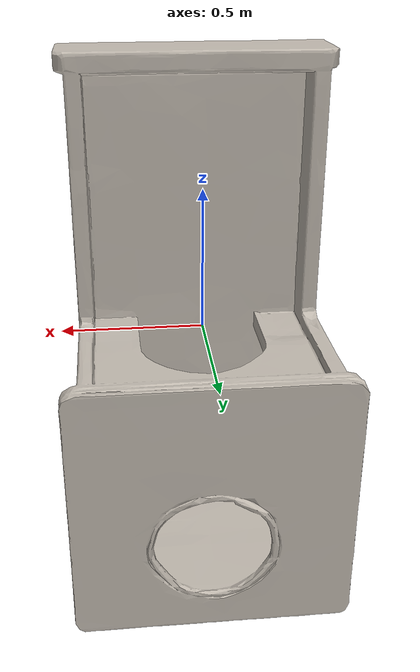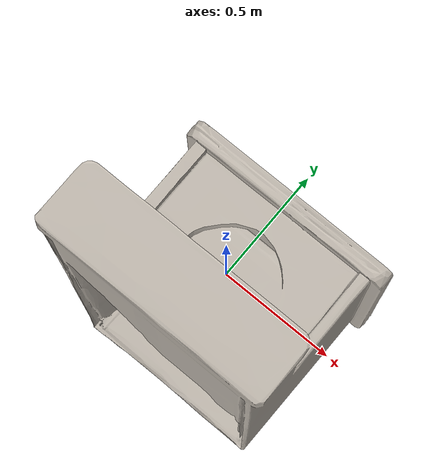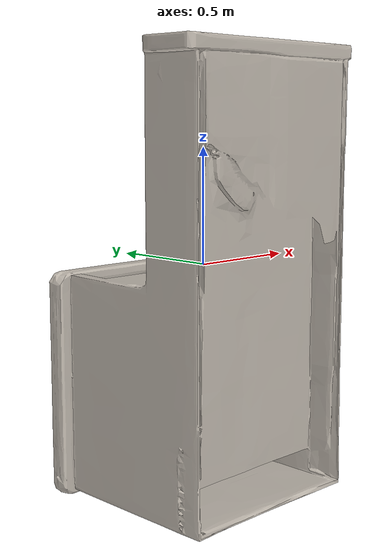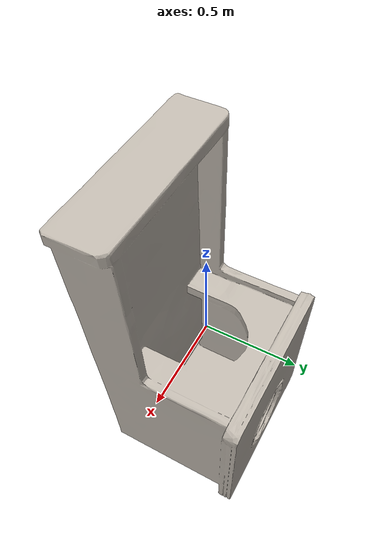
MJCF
<mujoco model="model">
  <default>
    <default class="visual">
      <geom group="2" type="mesh" contype="0" conaffinity="0"/>
    </default>
    <default class="collision">
      <geom group="3" type="mesh"/>
    </default>
  </default>
  <asset>
    <texture type="2d" name="texture" file="texture.png"/>
    <material name="Material.001" texture="texture" specular="0.5" shininess="0.25"/>
    <mesh file="model.obj"/>
    <mesh file="model_collision_0.obj"/>
    <mesh file="model_collision_1.obj"/>
    <mesh file="model_collision_2.obj"/>
    <mesh file="model_collision_3.obj"/>
    <mesh file="model_collision_4.obj"/>
    <mesh file="model_collision_5.obj"/>
    <mesh file="model_collision_6.obj"/>
    <mesh file="model_collision_7.obj"/>
    <mesh file="model_collision_8.obj"/>
    <mesh file="model_collision_9.obj"/>
    <mesh file="model_collision_10.obj"/>
    <mesh file="model_collision_11.obj"/>
    <mesh file="model_collision_12.obj"/>
    <mesh file="model_collision_13.obj"/>
    <mesh file="model_collision_14.obj"/>
    <mesh file="model_collision_15.obj"/>
    <mesh file="model_collision_16.obj"/>
    <mesh file="model_collision_17.obj"/>
    <mesh file="model_collision_18.obj"/>
    <mesh file="model_collision_19.obj"/>
    <mesh file="model_collision_20.obj"/>
    <mesh file="model_collision_21.obj"/>
    <mesh file="model_collision_22.obj"/>
    <mesh file="model_collision_23.obj"/>
    <mesh file="model_collision_24.obj"/>
    <mesh file="model_collision_25.obj"/>
    <mesh file="model_collision_26.obj"/>
    <mesh file="model_collision_27.obj"/>
    <mesh file="model_collision_28.obj"/>
    <mesh file="model_collision_29.obj"/>
    <mesh file="model_collision_30.obj"/>
    <mesh file="model_collision_31.obj"/>
    <mesh file="model_collision_32.obj"/>
    <mesh file="model_collision_33.obj"/>
    <mesh file="model_collision_34.obj"/>
    <mesh file="model_collision_35.obj"/>
    <mesh file="model_collision_36.obj"/>
    <mesh file="model_collision_37.obj"/>
    <mesh file="model_collision_38.obj"/>
    <mesh file="model_collision_39.obj"/>
    <mesh file="model_collision_40.obj"/>
    <mesh file="model_collision_41.obj"/>
    <mesh file="model_collision_42.obj"/>
    <mesh file="model_collision_43.obj"/>
    <mesh file="model_collision_44.obj"/>
    <mesh file="model_collision_45.obj"/>
    <mesh file="model_collision_46.obj"/>
    <mesh file="model_collision_47.obj"/>
    <mesh file="model_collision_48.obj"/>
    <mesh file="model_collision_49.obj"/>
    <mesh file="model_collision_50.obj"/>
    <mesh file="model_collision_51.obj"/>
    <mesh file="model_collision_52.obj"/>
    <mesh file="model_collision_53.obj"/>
    <mesh file="model_collision_54.obj"/>
    <mesh file="model_collision_55.obj"/>
    <mesh file="model_collision_56.obj"/>
    <mesh file="model_collision_57.obj"/>
    <mesh file="model_collision_58.obj"/>
    <mesh file="model_collision_59.obj"/>
    <mesh file="model_collision_60.obj"/>
    <mesh file="model_collision_61.obj"/>
    <mesh file="model_collision_62.obj"/>
    <mesh file="model_collision_63.obj"/>
    <mesh file="model_collision_64.obj"/>
    <mesh file="model_collision_65.obj"/>
    <mesh file="model_collision_66.obj"/>
    <mesh file="model_collision_67.obj"/>
    <mesh file="model_collision_68.obj"/>
    <mesh file="model_collision_69.obj"/>
    <mesh file="model_collision_70.obj"/>
    <mesh file="model_collision_71.obj"/>
    <mesh file="model_collision_72.obj"/>
    <mesh file="model_collision_73.obj"/>
    <mesh file="model_collision_74.obj"/>
    <mesh file="model_collision_75.obj"/>
    <mesh file="model_collision_76.obj"/>
    <mesh file="model_collision_77.obj"/>
    <mesh file="model_collision_78.obj"/>
    <mesh file="model_collision_79.obj"/>
    <mesh file="model_collision_80.obj"/>
    <mesh file="model_collision_81.obj"/>
    <mesh file="model_collision_82.obj"/>
    <mesh file="model_collision_83.obj"/>
    <mesh file="model_collision_84.obj"/>
    <mesh file="model_collision_85.obj"/>
    <mesh file="model_collision_86.obj"/>
    <mesh file="model_collision_87.obj"/>
    <mesh file="model_collision_88.obj"/>
    <mesh file="model_collision_89.obj"/>
    <mesh file="model_collision_90.obj"/>
    <mesh file="model_collision_91.obj"/>
    <mesh file="model_collision_92.obj"/>
    <mesh file="model_collision_93.obj"/>
    <mesh file="model_collision_94.obj"/>
    <mesh file="model_collision_95.obj"/>
    <mesh file="model_collision_96.obj"/>
    <mesh file="model_collision_97.obj"/>
    <mesh file="model_collision_98.obj"/>
    <mesh file="model_collision_99.obj"/>
    <mesh file="model_collision_100.obj"/>
    <mesh file="model_collision_101.obj"/>
    <mesh file="model_collision_102.obj"/>
    <mesh file="model_collision_103.obj"/>
    <mesh file="model_collision_104.obj"/>
    <mesh file="model_collision_105.obj"/>
    <mesh file="model_collision_106.obj"/>
    <mesh file="model_collision_107.obj"/>
    <mesh file="model_collision_108.obj"/>
    <mesh file="model_collision_109.obj"/>
    <mesh file="model_collision_110.obj"/>
    <mesh file="model_collision_111.obj"/>
    <mesh file="model_collision_112.obj"/>
    <mesh file="model_collision_113.obj"/>
    <mesh file="model_collision_114.obj"/>
    <mesh file="model_collision_115.obj"/>
    <mesh file="model_collision_116.obj"/>
    <mesh file="model_collision_117.obj"/>
    <mesh file="model_collision_118.obj"/>
    <mesh file="model_collision_119.obj"/>
    <mesh file="model_collision_120.obj"/>
    <mesh file="model_collision_121.obj"/>
    <mesh file="model_collision_122.obj"/>
    <mesh file="model_collision_123.obj"/>
    <mesh file="model_collision_124.obj"/>
    <mesh file="model_collision_125.obj"/>
    <mesh file="model_collision_126.obj"/>
    <mesh file="model_collision_127.obj"/>
    <mesh file="model_collision_128.obj"/>
    <mesh file="model_collision_129.obj"/>
    <mesh file="model_collision_130.obj"/>
    <mesh file="model_collision_131.obj"/>
    <mesh file="model_collision_132.obj"/>
    <mesh file="model_collision_133.obj"/>
    <mesh file="model_collision_134.obj"/>
    <mesh file="model_collision_135.obj"/>
    <mesh file="model_collision_136.obj"/>
    <mesh file="model_collision_137.obj"/>
    <mesh file="model_collision_138.obj"/>
    <mesh file="model_collision_139.obj"/>
    <mesh file="model_collision_140.obj"/>
    <mesh file="model_collision_141.obj"/>
    <mesh file="model_collision_142.obj"/>
    <mesh file="model_collision_143.obj"/>
    <mesh file="model_collision_144.obj"/>
    <mesh file="model_collision_145.obj"/>
    <mesh file="model_collision_146.obj"/>
    <mesh file="model_collision_147.obj"/>
    <mesh file="model_collision_148.obj"/>
    <mesh file="model_collision_149.obj"/>
    <mesh file="model_collision_150.obj"/>
    <mesh file="model_collision_151.obj"/>
    <mesh file="model_collision_152.obj"/>
    <mesh file="model_collision_153.obj"/>
    <mesh file="model_collision_154.obj"/>
    <mesh file="model_collision_155.obj"/>
    <mesh file="model_collision_156.obj"/>
    <mesh file="model_collision_157.obj"/>
    <mesh file="model_collision_158.obj"/>
    <mesh file="model_collision_159.obj"/>
    <mesh file="model_collision_160.obj"/>
    <mesh file="model_collision_161.obj"/>
    <mesh file="model_collision_162.obj"/>
    <mesh file="model_collision_163.obj"/>
    <mesh file="model_collision_164.obj"/>
    <mesh file="model_collision_165.obj"/>
    <mesh file="model_collision_166.obj"/>
    <mesh file="model_collision_167.obj"/>
    <mesh file="model_collision_168.obj"/>
    <mesh file="model_collision_169.obj"/>
    <mesh file="model_collision_170.obj"/>
    <mesh file="model_collision_171.obj"/>
    <mesh file="model_collision_172.obj"/>
    <mesh file="model_collision_173.obj"/>
    <mesh file="model_collision_174.obj"/>
    <mesh file="model_collision_175.obj"/>
    <mesh file="model_collision_176.obj"/>
    <mesh file="model_collision_177.obj"/>
    <mesh file="model_collision_178.obj"/>
    <mesh file="model_collision_179.obj"/>
    <mesh file="model_collision_180.obj"/>
    <mesh file="model_collision_181.obj"/>
    <mesh file="model_collision_182.obj"/>
    <mesh file="model_collision_183.obj"/>
    <mesh file="model_collision_184.obj"/>
    <mesh file="model_collision_185.obj"/>
    <mesh file="model_collision_186.obj"/>
    <mesh file="model_collision_187.obj"/>
    <mesh file="model_collision_188.obj"/>
    <mesh file="model_collision_189.obj"/>
    <mesh file="model_collision_190.obj"/>
    <mesh file="model_collision_191.obj"/>
    <mesh file="model_collision_192.obj"/>
    <mesh file="model_collision_193.obj"/>
    <mesh file="model_collision_194.obj"/>
    <mesh file="model_collision_195.obj"/>
    <mesh file="model_collision_196.obj"/>
    <mesh file="model_collision_197.obj"/>
    <mesh file="model_collision_198.obj"/>
    <mesh file="model_collision_199.obj"/>
    <mesh file="model_collision_200.obj"/>
    <mesh file="model_collision_201.obj"/>
    <mesh file="model_collision_202.obj"/>
    <mesh file="model_collision_203.obj"/>
    <mesh file="model_collision_204.obj"/>
    <mesh file="model_collision_205.obj"/>
    <mesh file="model_collision_206.obj"/>
    <mesh file="model_collision_207.obj"/>
    <mesh file="model_collision_208.obj"/>
    <mesh file="model_collision_209.obj"/>
    <mesh file="model_collision_210.obj"/>
    <mesh file="model_collision_211.obj"/>
    <mesh file="model_collision_212.obj"/>
    <mesh file="model_collision_213.obj"/>
    <mesh file="model_collision_214.obj"/>
    <mesh file="model_collision_215.obj"/>
    <mesh file="model_collision_216.obj"/>
    <mesh file="model_collision_217.obj"/>
    <mesh file="model_collision_218.obj"/>
    <mesh file="model_collision_219.obj"/>
    <mesh file="model_collision_220.obj"/>
    <mesh file="model_collision_221.obj"/>
    <mesh file="model_collision_222.obj"/>
    <mesh file="model_collision_223.obj"/>
    <mesh file="model_collision_224.obj"/>
    <mesh file="model_collision_225.obj"/>
    <mesh file="model_collision_226.obj"/>
    <mesh file="model_collision_227.obj"/>
    <mesh file="model_collision_228.obj"/>
    <mesh file="model_collision_229.obj"/>
    <mesh file="model_collision_230.obj"/>
    <mesh file="model_collision_231.obj"/>
    <mesh file="model_collision_232.obj"/>
    <mesh file="model_collision_233.obj"/>
    <mesh file="model_collision_234.obj"/>
    <mesh file="model_collision_235.obj"/>
    <mesh file="model_collision_236.obj"/>
    <mesh file="model_collision_237.obj"/>
    <mesh file="model_collision_238.obj"/>
    <mesh file="model_collision_239.obj"/>
    <mesh file="model_collision_240.obj"/>
    <mesh file="model_collision_241.obj"/>
    <mesh file="model_collision_242.obj"/>
    <mesh file="model_collision_243.obj"/>
    <mesh file="model_collision_244.obj"/>
    <mesh file="model_collision_245.obj"/>
    <mesh file="model_collision_246.obj"/>
    <mesh file="model_collision_247.obj"/>
    <mesh file="model_collision_248.obj"/>
    <mesh file="model_collision_249.obj"/>
    <mesh file="model_collision_250.obj"/>
    <mesh file="model_collision_251.obj"/>
    <mesh file="model_collision_252.obj"/>
    <mesh file="model_collision_253.obj"/>
    <mesh file="model_collision_254.obj"/>
    <mesh file="model_collision_255.obj"/>
    <mesh file="model_collision_256.obj"/>
    <mesh file="model_collision_257.obj"/>
    <mesh file="model_collision_258.obj"/>
    <mesh file="model_collision_259.obj"/>
    <mesh file="model_collision_260.obj"/>
    <mesh file="model_collision_261.obj"/>
    <mesh file="model_collision_262.obj"/>
    <mesh file="model_collision_263.obj"/>
    <mesh file="model_collision_264.obj"/>
    <mesh file="model_collision_265.obj"/>
    <mesh file="model_collision_266.obj"/>
    <mesh file="model_collision_267.obj"/>
    <mesh file="model_collision_268.obj"/>
    <mesh file="model_collision_269.obj"/>
    <mesh file="model_collision_270.obj"/>
    <mesh file="model_collision_271.obj"/>
    <mesh file="model_collision_272.obj"/>
    <mesh file="model_collision_273.obj"/>
    <mesh file="model_collision_274.obj"/>
    <mesh file="model_collision_275.obj"/>
    <mesh file="model_collision_276.obj"/>
    <mesh file="model_collision_277.obj"/>
  </asset>
  <worldbody>
    <body name="model">
      <geom material="Material.001" mesh="model" class="visual"/>
      <geom mesh="model_collision_0" rgba="0.6587957864419071 0.8772163802960932 0.3861479678943287 1" class="collision"/>
      <geom mesh="model_collision_1" rgba="0.7588541550623709 0.1893972782798624 0.37943860901026194 1" class="collision"/>
      <geom mesh="model_collision_2" rgba="0.48933765626564507 0.9695244709947626 0.7338256199344897 1" class="collision"/>
      <geom mesh="model_collision_3" rgba="0.23897557280588533 0.010786194871451382 0.02649007694402561 1" class="collision"/>
      <geom mesh="model_collision_4" rgba="0.365777748227627 0.5867165200515327 0.41859934221542294 1" class="collision"/>
      <geom mesh="model_collision_5" rgba="0.22060896461696222 0.36533829526665573 0.8855212682148677 1" class="collision"/>
      <geom mesh="model_collision_6" rgba="0.11858030108295536 0.5163241589610037 0.18319386874207833 1" class="collision"/>
      <geom mesh="model_collision_7" rgba="0.6407027989588587 0.20831995723915475 0.7672722482258051 1" class="collision"/>
      <geom mesh="model_collision_8" rgba="0.6180980085330194 0.22996009886085444 0.9149751667705702 1" class="collision"/>
      <geom mesh="model_collision_9" rgba="0.027815516991358535 0.7676452778778768 0.6521782947312494 1" class="collision"/>
      <geom mesh="model_collision_10" rgba="0.36549753683055586 0.2157999825475222 0.1507458490318847 1" class="collision"/>
      <geom mesh="model_collision_11" rgba="0.5724580731264256 0.9574179173113297 0.37818080104629515 1" class="collision"/>
      <geom mesh="model_collision_12" rgba="0.028545911967627013 0.421799339320451 0.26876222033196384 1" class="collision"/>
      <geom mesh="model_collision_13" rgba="0.39317679740606404 0.7583698173852014 0.2572157684206642 1" class="collision"/>
      <geom mesh="model_collision_14" rgba="0.76290271086967 0.828190669076819 0.5030786665210893 1" class="collision"/>
      <geom mesh="model_collision_15" rgba="0.7210697078196127 0.394570153025124 0.5768812352648263 1" class="collision"/>
      <geom mesh="model_collision_16" rgba="0.3230982282272141 0.6041735403256443 0.7415602637850462 1" class="collision"/>
      <geom mesh="model_collision_17" rgba="0.020149935784545048 0.7948983570971808 0.7400803946008455 1" class="collision"/>
      <geom mesh="model_collision_18" rgba="0.4218060819713054 0.3878053171238107 0.7963856716950564 1" class="collision"/>
      <geom mesh="model_collision_19" rgba="0.3702604055315696 0.21963826810931375 0.9752203407529496 1" class="collision"/>
      <geom mesh="model_collision_20" rgba="0.2772739121215816 0.7693221903148425 0.3300072096204769 1" class="collision"/>
      <geom mesh="model_collision_21" rgba="0.19271251059639827 0.13411237008084365 0.7738530955888586 1" class="collision"/>
      <geom mesh="model_collision_22" rgba="0.36505299041715955 0.14757477754737292 0.8111534966155121 1" class="collision"/>
      <geom mesh="model_collision_23" rgba="0.6852750202141143 0.37908638044978193 0.12317111468582898 1" class="collision"/>
      <geom mesh="model_collision_24" rgba="0.6147229546690341 0.716521569573399 0.5258096597230669 1" class="collision"/>
      <geom mesh="model_collision_25" rgba="0.04357086921121678 0.055910561254217006 0.014238397902254785 1" class="collision"/>
      <geom mesh="model_collision_26" rgba="0.0466510659879541 0.7259451099496347 0.3523617695330299 1" class="collision"/>
      <geom mesh="model_collision_27" rgba="0.509139057270697 0.35867890850848927 0.5058152129945177 1" class="collision"/>
      <geom mesh="model_collision_28" rgba="0.6940930473091614 0.3535238090460737 0.04534065423221534 1" class="collision"/>
      <geom mesh="model_collision_29" rgba="0.6495502043259175 0.3652080902007333 0.30534441603726126 1" class="collision"/>
      <geom mesh="model_collision_30" rgba="0.5496254353945454 0.4071851839320664 0.5526002164688095 1" class="collision"/>
      <geom mesh="model_collision_31" rgba="0.39335742755718217 0.7492551789407093 0.15500381695405785 1" class="collision"/>
      <geom mesh="model_collision_32" rgba="0.8598782018471182 0.007897311352655478 0.664675978786444 1" class="collision"/>
      <geom mesh="model_collision_33" rgba="0.4813883111619812 0.7800274877007921 0.15327854350985337 1" class="collision"/>
      <geom mesh="model_collision_34" rgba="0.7649096138077267 0.07447911460559309 0.6673556309406121 1" class="collision"/>
      <geom mesh="model_collision_35" rgba="0.5803166895080961 0.1900176528646621 0.9543054953342134 1" class="collision"/>
      <geom mesh="model_collision_36" rgba="0.738286412576969 0.808620852768266 0.6005410529877504 1" class="collision"/>
      <geom mesh="model_collision_37" rgba="0.7461875895559988 0.11098023025852433 0.811511908609581 1" class="collision"/>
      <geom mesh="model_collision_38" rgba="0.48381988437572565 0.599432403536869 0.9906040447406667 1" class="collision"/>
      <geom mesh="model_collision_39" rgba="0.7343575259014719 0.3200542016196174 0.23810580000614112 1" class="collision"/>
      <geom mesh="model_collision_40" rgba="0.5127998806173889 0.8193972505037113 0.32767659712797326 1" class="collision"/>
      <geom mesh="model_collision_41" rgba="0.17086278521609077 0.4147914319456657 0.12506226030019707 1" class="collision"/>
      <geom mesh="model_collision_42" rgba="0.6263664036675528 0.1770421442332143 0.06785552447074772 1" class="collision"/>
      <geom mesh="model_collision_43" rgba="0.8023158006623168 0.8984563094730267 0.01806303476682336 1" class="collision"/>
      <geom mesh="model_collision_44" rgba="0.7757118235226457 0.2453778199102994 0.37548689972690696 1" class="collision"/>
      <geom mesh="model_collision_45" rgba="0.7565070606386186 0.877167560097369 0.08115953192222825 1" class="collision"/>
      <geom mesh="model_collision_46" rgba="0.9375474469605997 0.8390079237902862 0.7237902949745956 1" class="collision"/>
      <geom mesh="model_collision_47" rgba="0.8583350348517212 0.581344263872102 0.3393822938023464 1" class="collision"/>
      <geom mesh="model_collision_48" rgba="0.162952238651913 0.005498286426415699 0.3509902845554925 1" class="collision"/>
      <geom mesh="model_collision_49" rgba="0.08046698181661172 0.24289233812824385 0.9992225901381961 1" class="collision"/>
      <geom mesh="model_collision_50" rgba="0.13649450749649583 0.9863604905002403 0.1964227070645922 1" class="collision"/>
      <geom mesh="model_collision_51" rgba="0.6387359922228779 0.686000211957101 0.49343657251083284 1" class="collision"/>
      <geom mesh="model_collision_52" rgba="0.20572789866377705 0.966832219821574 0.9802108719320876 1" class="collision"/>
      <geom mesh="model_collision_53" rgba="0.8445584797781901 0.5524731646841888 0.087395690068229 1" class="collision"/>
      <geom mesh="model_collision_54" rgba="0.4037804412543372 0.9253731359008396 0.410192294825659 1" class="collision"/>
      <geom mesh="model_collision_55" rgba="0.05758577322592762 0.28965827667087574 0.9994678744399148 1" class="collision"/>
      <geom mesh="model_collision_56" rgba="0.8617570737534774 0.8402420126344347 0.9473632726315314 1" class="collision"/>
      <geom mesh="model_collision_57" rgba="0.7016968040330613 0.959247109779297 0.558215936458284 1" class="collision"/>
      <geom mesh="model_collision_58" rgba="0.5697232387308335 0.42565097861177437 0.5539072053715193 1" class="collision"/>
      <geom mesh="model_collision_59" rgba="0.17612741938746745 0.15026718646803994 0.06047821270838005 1" class="collision"/>
      <geom mesh="model_collision_60" rgba="0.6361060592715331 0.23756078792610558 0.6885362239224914 1" class="collision"/>
      <geom mesh="model_collision_61" rgba="0.16616914883589728 0.6071264946100027 0.3983995360332495 1" class="collision"/>
      <geom mesh="model_collision_62" rgba="0.3262893623283436 0.60635317752026 0.4510637392495642 1" class="collision"/>
      <geom mesh="model_collision_63" rgba="0.6993717768997557 0.586737093446427 0.6695769991035649 1" class="collision"/>
      <geom mesh="model_collision_64" rgba="0.6154115338609143 0.367305214914752 0.49733222458267845 1" class="collision"/>
      <geom mesh="model_collision_65" rgba="0.7977985309827511 0.6422225639650637 0.452949115713265 1" class="collision"/>
      <geom mesh="model_collision_66" rgba="0.4147818838777746 0.6723855281683668 0.46899414792750305 1" class="collision"/>
      <geom mesh="model_collision_67" rgba="0.27636073132864836 0.3435653104289066 0.7935162864906408 1" class="collision"/>
      <geom mesh="model_collision_68" rgba="0.6283920640064804 0.13959279168990713 0.6241386706862471 1" class="collision"/>
      <geom mesh="model_collision_69" rgba="0.7429645027662702 0.4622940698389594 0.9511844287828987 1" class="collision"/>
      <geom mesh="model_collision_70" rgba="0.8767211310099742 0.9678995643480487 0.2941317651501566 1" class="collision"/>
      <geom mesh="model_collision_71" rgba="0.8997771791999758 0.9908207680157058 0.5169738811099865 1" class="collision"/>
      <geom mesh="model_collision_72" rgba="0.4359482893025449 0.4867960184626341 0.33487693936513974 1" class="collision"/>
      <geom mesh="model_collision_73" rgba="0.15899114604954212 0.6907849724654126 0.7515939115232729 1" class="collision"/>
      <geom mesh="model_collision_74" rgba="0.39354482332177165 0.16596741730829878 0.593775747140664 1" class="collision"/>
      <geom mesh="model_collision_75" rgba="0.9755692297596319 0.8197594007084835 0.15722606024950891 1" class="collision"/>
      <geom mesh="model_collision_76" rgba="0.31057728146349894 0.8866826503335692 0.6709128060041722 1" class="collision"/>
      <geom mesh="model_collision_77" rgba="0.4898661577145501 0.7464127370886867 0.20416632749078423 1" class="collision"/>
      <geom mesh="model_collision_78" rgba="0.7259843532656727 0.2194909446737957 0.9165917873161071 1" class="collision"/>
      <geom mesh="model_collision_79" rgba="0.5165827173491514 0.68160971229905 0.7504008094063144 1" class="collision"/>
      <geom mesh="model_collision_80" rgba="0.3111356102970536 0.8338484534914353 0.30716945397611006 1" class="collision"/>
      <geom mesh="model_collision_81" rgba="0.18356052804848166 0.40350352118085075 0.6755693110584788 1" class="collision"/>
      <geom mesh="model_collision_82" rgba="0.1878869136609732 0.38157521336735156 0.4501809641194632 1" class="collision"/>
      <geom mesh="model_collision_83" rgba="0.5007190008362276 0.646023522809987 0.865579056121407 1" class="collision"/>
      <geom mesh="model_collision_84" rgba="0.3493195744539457 0.6881832441381623 0.4885980937629957 1" class="collision"/>
      <geom mesh="model_collision_85" rgba="0.22743369415630343 0.9536393484771173 0.7191913936033069 1" class="collision"/>
      <geom mesh="model_collision_86" rgba="0.3089787231412505 0.6412403658487835 0.8446569470503908 1" class="collision"/>
      <geom mesh="model_collision_87" rgba="0.5902261438375385 0.2739101266741034 0.889962854399884 1" class="collision"/>
      <geom mesh="model_collision_88" rgba="0.2270309241754762 0.6893097355531965 0.320366066658222 1" class="collision"/>
      <geom mesh="model_collision_89" rgba="0.13755394982269942 0.9913959978733066 0.8864611667122987 1" class="collision"/>
      <geom mesh="model_collision_90" rgba="0.3582228120876366 0.10231751093659303 0.3125398981343058 1" class="collision"/>
      <geom mesh="model_collision_91" rgba="0.9411649072187863 0.7798046801777262 0.7747252732260657 1" class="collision"/>
      <geom mesh="model_collision_92" rgba="0.43065065232931865 0.3618550024967928 0.45141413032941224 1" class="collision"/>
      <geom mesh="model_collision_93" rgba="0.6853064243957842 0.6510498663893606 0.5094573741057977 1" class="collision"/>
      <geom mesh="model_collision_94" rgba="0.4973096859260494 0.5518060413310177 0.8030758079791199 1" class="collision"/>
      <geom mesh="model_collision_95" rgba="0.2853607526613826 0.17550400335890592 0.43224777738999076 1" class="collision"/>
      <geom mesh="model_collision_96" rgba="0.11639220695312791 0.2863612132179796 0.10579103453866234 1" class="collision"/>
      <geom mesh="model_collision_97" rgba="0.2756315931629314 0.5158852220164983 0.35910247316433375 1" class="collision"/>
      <geom mesh="model_collision_98" rgba="0.99627688566253 0.8796094874731324 0.9598252134325942 1" class="collision"/>
      <geom mesh="model_collision_99" rgba="0.8322389486123327 0.9130167248422681 0.38209168054885634 1" class="collision"/>
      <geom mesh="model_collision_100" rgba="0.6180270820134561 0.04877493546035694 0.2652606258553768 1" class="collision"/>
      <geom mesh="model_collision_101" rgba="0.6285410891271109 0.6136944633651374 0.6079438008099965 1" class="collision"/>
      <geom mesh="model_collision_102" rgba="0.3398930435309153 0.6334666693512848 0.515148255162726 1" class="collision"/>
      <geom mesh="model_collision_103" rgba="0.2226887828381633 0.747664064388591 0.9023633579292868 1" class="collision"/>
      <geom mesh="model_collision_104" rgba="0.5156400236237639 0.570063468427841 0.03363678594776609 1" class="collision"/>
      <geom mesh="model_collision_105" rgba="0.5863589967872794 0.09066347894237492 0.749143064757933 1" class="collision"/>
      <geom mesh="model_collision_106" rgba="0.2689948468186423 0.9970963110978956 0.29321386608190503 1" class="collision"/>
      <geom mesh="model_collision_107" rgba="0.23036390811322804 0.15506526737258686 0.9092301023438887 1" class="collision"/>
      <geom mesh="model_collision_108" rgba="0.12597444828984705 0.8024474864461202 0.8570454917818487 1" class="collision"/>
      <geom mesh="model_collision_109" rgba="0.34990554129924223 0.009368038510135568 0.8804207033640375 1" class="collision"/>
      <geom mesh="model_collision_110" rgba="0.9537124912196159 0.4614043974814225 0.31231804718073464 1" class="collision"/>
      <geom mesh="model_collision_111" rgba="0.6634121569674082 0.5764564854900959 0.0281404677471766 1" class="collision"/>
      <geom mesh="model_collision_112" rgba="0.8615653588435138 0.6653096296311557 0.9937251639444131 1" class="collision"/>
      <geom mesh="model_collision_113" rgba="0.6976996294367402 0.4681620142568872 0.24591819277904003 1" class="collision"/>
      <geom mesh="model_collision_114" rgba="0.7635980149499754 0.4055756398093311 0.48634079466485824 1" class="collision"/>
      <geom mesh="model_collision_115" rgba="0.027536178673396083 0.7897753188695865 0.8238954033077885 1" class="collision"/>
      <geom mesh="model_collision_116" rgba="0.39096099569906806 0.553953817006457 0.9501032221784337 1" class="collision"/>
      <geom mesh="model_collision_117" rgba="0.45766577742821146 0.3634320494524056 0.013536606746700541 1" class="collision"/>
      <geom mesh="model_collision_118" rgba="0.1715836075044359 0.7987880880074106 0.968451773839224 1" class="collision"/>
      <geom mesh="model_collision_119" rgba="0.8210016296662934 0.18080096464993245 0.9069207546528973 1" class="collision"/>
      <geom mesh="model_collision_120" rgba="0.4261377617922213 0.2807778386061299 0.284646327997813 1" class="collision"/>
      <geom mesh="model_collision_121" rgba="0.8041579467227927 0.1497632021311196 0.72806886914239 1" class="collision"/>
      <geom mesh="model_collision_122" rgba="0.9407886971036069 0.7302764470633821 0.5792194012850742 1" class="collision"/>
      <geom mesh="model_collision_123" rgba="0.6370440456901889 0.5852230268579706 0.17568488863923082 1" class="collision"/>
      <geom mesh="model_collision_124" rgba="0.7887863686311127 0.4338685733409102 0.2578818611887481 1" class="collision"/>
      <geom mesh="model_collision_125" rgba="0.8811036599244534 0.6738727510906517 0.4112032256830177 1" class="collision"/>
      <geom mesh="model_collision_126" rgba="0.7442633340086957 0.47629786449447187 0.2682157400468591 1" class="collision"/>
      <geom mesh="model_collision_127" rgba="0.34871183029437947 0.9439586798911686 0.560145135915227 1" class="collision"/>
      <geom mesh="model_collision_128" rgba="0.9352645919591019 0.6815081867892423 0.4605963214338342 1" class="collision"/>
      <geom mesh="model_collision_129" rgba="0.23666144442844117 0.0694698078091136 0.023680782459893246 1" class="collision"/>
      <geom mesh="model_collision_130" rgba="0.7945665935067266 0.8035791598176097 0.44198130622441656 1" class="collision"/>
      <geom mesh="model_collision_131" rgba="0.4795214929705188 0.3226896341463943 0.8536006101469725 1" class="collision"/>
      <geom mesh="model_collision_132" rgba="0.12963808067796379 0.11875244752531111 0.12346802534542722 1" class="collision"/>
      <geom mesh="model_collision_133" rgba="0.30721236914101024 0.6528443202204929 0.8007081594233417 1" class="collision"/>
      <geom mesh="model_collision_134" rgba="0.034668343670551494 0.5856354534618479 0.45430050781248954 1" class="collision"/>
      <geom mesh="model_collision_135" rgba="0.5598721799797514 0.6145467909587502 0.6591967058264049 1" class="collision"/>
      <geom mesh="model_collision_136" rgba="0.16915245033578752 0.2765444254864703 0.20206910979661763 1" class="collision"/>
      <geom mesh="model_collision_137" rgba="0.8768789073322318 0.003250582258093382 0.6223060993249647 1" class="collision"/>
      <geom mesh="model_collision_138" rgba="0.728367473125102 0.8203477544805629 0.29958945154880257 1" class="collision"/>
      <geom mesh="model_collision_139" rgba="0.49409374990453414 0.9935179009264095 0.8908573290000604 1" class="collision"/>
      <geom mesh="model_collision_140" rgba="0.4595836888857463 0.032263606249968935 0.7457834114392533 1" class="collision"/>
      <geom mesh="model_collision_141" rgba="0.4301950436425337 0.42930202317944777 0.18420116873617298 1" class="collision"/>
      <geom mesh="model_collision_142" rgba="0.7533986676920007 0.6691886007342951 0.9320029168310556 1" class="collision"/>
      <geom mesh="model_collision_143" rgba="0.1925565463932415 0.5849063480369628 0.9627990844353949 1" class="collision"/>
      <geom mesh="model_collision_144" rgba="0.21301713903998076 0.9195081986880536 0.3105705975182754 1" class="collision"/>
      <geom mesh="model_collision_145" rgba="0.11812954584867652 0.19831236891884074 0.36143968726981635 1" class="collision"/>
      <geom mesh="model_collision_146" rgba="0.9695908975746719 0.9914799143900769 0.4601501962561363 1" class="collision"/>
      <geom mesh="model_collision_147" rgba="0.3501809236596827 0.6510573680521523 0.42810094127190157 1" class="collision"/>
      <geom mesh="model_collision_148" rgba="0.15252970605620464 0.2662666981232221 0.31306257943181437 1" class="collision"/>
      <geom mesh="model_collision_149" rgba="0.6397336172807453 0.5982954821087022 0.797260690990469 1" class="collision"/>
      <geom mesh="model_collision_150" rgba="0.8821579235901624 0.7236772374845957 0.4605643122202575 1" class="collision"/>
      <geom mesh="model_collision_151" rgba="0.8901548595830971 0.4533193323312855 0.4909252427622003 1" class="collision"/>
      <geom mesh="model_collision_152" rgba="0.33212299969460235 0.2389442964733236 0.44415655392801945 1" class="collision"/>
      <geom mesh="model_collision_153" rgba="0.7928041483253974 0.34483711166074904 0.685669887022433 1" class="collision"/>
      <geom mesh="model_collision_154" rgba="0.3265649471216937 0.7739027125868905 0.06896749655415724 1" class="collision"/>
      <geom mesh="model_collision_155" rgba="0.1642951796091935 0.5631332766350593 0.6723635905588335 1" class="collision"/>
      <geom mesh="model_collision_156" rgba="0.533546620570745 0.9594871534941899 0.07377074223362146 1" class="collision"/>
      <geom mesh="model_collision_157" rgba="0.17099183207604562 0.79554619673814 0.01484458751638884 1" class="collision"/>
      <geom mesh="model_collision_158" rgba="0.912607993957504 0.26374503372604685 0.9799851085325577 1" class="collision"/>
      <geom mesh="model_collision_159" rgba="0.19385761040734095 0.901511530418162 0.032629779521926805 1" class="collision"/>
      <geom mesh="model_collision_160" rgba="0.9298040425538141 0.7116529394091505 0.9207360085947013 1" class="collision"/>
      <geom mesh="model_collision_161" rgba="0.7288590336071902 0.96606369788425 0.46211361176891896 1" class="collision"/>
      <geom mesh="model_collision_162" rgba="0.8821651822940881 0.2708735576227015 0.8979748631199235 1" class="collision"/>
      <geom mesh="model_collision_163" rgba="0.003091796460144458 0.5551436899236261 0.05038663994628445 1" class="collision"/>
      <geom mesh="model_collision_164" rgba="0.803393615898417 0.30754116904515605 0.16180552967883577 1" class="collision"/>
      <geom mesh="model_collision_165" rgba="0.2528253549549152 0.2878723415193968 0.692899412974731 1" class="collision"/>
      <geom mesh="model_collision_166" rgba="0.3155639215315602 0.954497112710486 0.16204535666878683 1" class="collision"/>
      <geom mesh="model_collision_167" rgba="0.08486531417367849 0.9168513078963118 0.317728989818891 1" class="collision"/>
      <geom mesh="model_collision_168" rgba="0.5389418769504015 0.5224313276765525 0.6278189886784412 1" class="collision"/>
      <geom mesh="model_collision_169" rgba="0.44202095007960385 0.9887475731702369 0.41670783165398595 1" class="collision"/>
      <geom mesh="model_collision_170" rgba="0.3341431944272587 0.49087197231750246 0.5965485641303947 1" class="collision"/>
      <geom mesh="model_collision_171" rgba="0.5816352615752506 0.1656087685840767 0.9721495268973428 1" class="collision"/>
      <geom mesh="model_collision_172" rgba="0.26657457276596974 0.5433720931449719 0.8007261664024162 1" class="collision"/>
      <geom mesh="model_collision_173" rgba="0.28947414976955854 0.1354310698771528 0.13821073200796963 1" class="collision"/>
      <geom mesh="model_collision_174" rgba="0.12600782177035041 0.4618727820326436 0.10940562238311669 1" class="collision"/>
      <geom mesh="model_collision_175" rgba="0.43366335537932676 0.45342953847092404 0.47621137603507424 1" class="collision"/>
      <geom mesh="model_collision_176" rgba="0.5299476570153465 0.2769856640523558 0.48560476285526133 1" class="collision"/>
      <geom mesh="model_collision_177" rgba="0.04764610141472869 0.4416913452142375 0.9049844731578607 1" class="collision"/>
      <geom mesh="model_collision_178" rgba="0.4096410858302917 0.7467962879736909 0.8475110847345253 1" class="collision"/>
      <geom mesh="model_collision_179" rgba="0.3104542747912029 0.5610989878098631 0.39886311441282163 1" class="collision"/>
      <geom mesh="model_collision_180" rgba="0.08261128751418045 0.7625194805122313 0.2036366773338496 1" class="collision"/>
      <geom mesh="model_collision_181" rgba="0.5006438580120329 0.6196839213422728 0.09011017575386404 1" class="collision"/>
      <geom mesh="model_collision_182" rgba="0.3620045674531791 0.4430652335671126 0.3894862856750234 1" class="collision"/>
      <geom mesh="model_collision_183" rgba="0.030846776286953093 0.9557863647519989 0.4480757150138869 1" class="collision"/>
      <geom mesh="model_collision_184" rgba="0.6591507854130946 0.49313187117578794 0.6722780341922522 1" class="collision"/>
      <geom mesh="model_collision_185" rgba="0.03242558199420664 0.2796434402116028 0.5229217929470555 1" class="collision"/>
      <geom mesh="model_collision_186" rgba="0.5160653900132746 0.4027934175704875 0.7031809871078911 1" class="collision"/>
      <geom mesh="model_collision_187" rgba="0.38742549221156863 0.4056533509681721 0.196899567427416 1" class="collision"/>
      <geom mesh="model_collision_188" rgba="0.034195101778128234 0.2776563451375218 0.31948585678256836 1" class="collision"/>
      <geom mesh="model_collision_189" rgba="0.015492012713996917 0.9973027194893761 0.12711583729433396 1" class="collision"/>
      <geom mesh="model_collision_190" rgba="0.9896757309748133 0.24593088815135233 0.24228120601442593 1" class="collision"/>
      <geom mesh="model_collision_191" rgba="0.7798478584021789 0.41593440236443824 0.801355976972516 1" class="collision"/>
      <geom mesh="model_collision_192" rgba="0.9593449126874725 0.4387182110150192 0.6269450309655741 1" class="collision"/>
      <geom mesh="model_collision_193" rgba="0.5074893892707263 0.7121925212822527 0.4881100211467767 1" class="collision"/>
      <geom mesh="model_collision_194" rgba="0.635084558895939 0.8223759687776471 0.5871095163027151 1" class="collision"/>
      <geom mesh="model_collision_195" rgba="0.019743230248726706 0.2133159633321946 0.34203141329930165 1" class="collision"/>
      <geom mesh="model_collision_196" rgba="0.27290339412403364 0.7572637222744689 0.938350798963988 1" class="collision"/>
      <geom mesh="model_collision_197" rgba="0.062129480805148685 0.9500944100937561 0.6999286502371064 1" class="collision"/>
      <geom mesh="model_collision_198" rgba="0.7770033137427718 0.26461140057372723 0.44169843430882294 1" class="collision"/>
      <geom mesh="model_collision_199" rgba="0.972146381999291 0.2229834185647518 0.8017184095398816 1" class="collision"/>
      <geom mesh="model_collision_200" rgba="0.8752616968769065 0.2858554397488098 0.4941172216911397 1" class="collision"/>
      <geom mesh="model_collision_201" rgba="0.21964969565708348 0.10857450673363978 0.36227463058405074 1" class="collision"/>
      <geom mesh="model_collision_202" rgba="0.45172548143431 0.6176830405480779 0.4224286665895176 1" class="collision"/>
      <geom mesh="model_collision_203" rgba="0.9060293008014337 0.38345398095663463 0.6653769269634822 1" class="collision"/>
      <geom mesh="model_collision_204" rgba="0.9673069450726236 0.775143847831622 0.9099875049041587 1" class="collision"/>
      <geom mesh="model_collision_205" rgba="0.01256511793531867 0.4641311910427792 0.3435351789757508 1" class="collision"/>
      <geom mesh="model_collision_206" rgba="0.18347427818581075 0.48776789568128753 0.33270785150181437 1" class="collision"/>
      <geom mesh="model_collision_207" rgba="0.3582409551535298 0.30580725791495744 0.4767420525865297 1" class="collision"/>
      <geom mesh="model_collision_208" rgba="0.8830511451337476 0.8669291880463773 0.5038645106562717 1" class="collision"/>
      <geom mesh="model_collision_209" rgba="0.434298005297564 0.36692361870223655 0.3380638931850891 1" class="collision"/>
      <geom mesh="model_collision_210" rgba="0.5764635980370053 0.7934663777728371 0.3260127956747415 1" class="collision"/>
      <geom mesh="model_collision_211" rgba="0.7619564491841 0.5407524395604706 0.7132774688378791 1" class="collision"/>
      <geom mesh="model_collision_212" rgba="0.27300396405740424 0.6136654060120414 0.688690203909338 1" class="collision"/>
      <geom mesh="model_collision_213" rgba="0.7876829847524872 0.6948561110406785 0.7677051823123647 1" class="collision"/>
      <geom mesh="model_collision_214" rgba="0.7967064429658394 0.7189048779432271 0.838230650568043 1" class="collision"/>
      <geom mesh="model_collision_215" rgba="0.12415092230308622 0.7375620379745833 0.22781957814488552 1" class="collision"/>
      <geom mesh="model_collision_216" rgba="0.14321610141829288 0.2502284186036806 0.6996819859520816 1" class="collision"/>
      <geom mesh="model_collision_217" rgba="0.6952493237403725 0.48133976322814165 0.12180026710387581 1" class="collision"/>
      <geom mesh="model_collision_218" rgba="0.2658650543108928 0.5668326890562015 0.4148300529626837 1" class="collision"/>
      <geom mesh="model_collision_219" rgba="0.17028207109926885 0.8843014036749928 0.37616938224376495 1" class="collision"/>
      <geom mesh="model_collision_220" rgba="0.4400343390178645 0.26854519031014623 0.3900058129485804 1" class="collision"/>
      <geom mesh="model_collision_221" rgba="0.7474950297682333 0.4342459076820393 0.983156486933339 1" class="collision"/>
      <geom mesh="model_collision_222" rgba="0.8705350212774249 0.4464083107298169 0.00149455107055807 1" class="collision"/>
      <geom mesh="model_collision_223" rgba="0.19758893706098601 0.8738586674711831 0.43581875710677576 1" class="collision"/>
      <geom mesh="model_collision_224" rgba="0.7633814820807572 0.21180555880553398 0.1190071148734867 1" class="collision"/>
      <geom mesh="model_collision_225" rgba="0.1366016921690859 0.8691924103299858 0.557897041007612 1" class="collision"/>
      <geom mesh="model_collision_226" rgba="0.4054681060873352 0.25748359627461037 0.7634264595830841 1" class="collision"/>
      <geom mesh="model_collision_227" rgba="0.7900663440425141 0.8002272758458885 0.903853626732806 1" class="collision"/>
      <geom mesh="model_collision_228" rgba="0.06484488462374116 0.39091326666665105 0.4524604289245895 1" class="collision"/>
      <geom mesh="model_collision_229" rgba="0.44602556268776894 0.6764731318106136 0.9107166267454143 1" class="collision"/>
      <geom mesh="model_collision_230" rgba="0.3947505607950781 0.31151500985353653 0.2707121573804351 1" class="collision"/>
      <geom mesh="model_collision_231" rgba="0.11526617195025635 0.4741467176178409 0.7996272579375182 1" class="collision"/>
      <geom mesh="model_collision_232" rgba="0.678795827662293 0.5950445451297853 0.47470609162573163 1" class="collision"/>
      <geom mesh="model_collision_233" rgba="0.8860694023955864 0.961966380119461 0.3235016239622188 1" class="collision"/>
      <geom mesh="model_collision_234" rgba="0.3569434709135735 0.48013930626435053 0.7720511751215383 1" class="collision"/>
      <geom mesh="model_collision_235" rgba="0.022951007531917256 0.2839659881372971 0.23873916062650336 1" class="collision"/>
      <geom mesh="model_collision_236" rgba="0.13675207827488178 0.18199088825827803 0.5873737893974168 1" class="collision"/>
      <geom mesh="model_collision_237" rgba="0.9381129278577192 0.42511040774104947 0.2112414670331073 1" class="collision"/>
      <geom mesh="model_collision_238" rgba="0.10490681948460645 0.8036304882009352 0.44756091028834755 1" class="collision"/>
      <geom mesh="model_collision_239" rgba="0.7586016800714489 0.7425055361860678 0.25239469261023395 1" class="collision"/>
      <geom mesh="model_collision_240" rgba="0.8969804893533186 0.5844942693989138 0.30208203493029406 1" class="collision"/>
      <geom mesh="model_collision_241" rgba="0.5137677489249481 0.8386465058345428 0.432533850877853 1" class="collision"/>
      <geom mesh="model_collision_242" rgba="0.37533573209831894 0.7655184293760744 0.8783897903450767 1" class="collision"/>
      <geom mesh="model_collision_243" rgba="0.5882262244519524 0.5063477137912592 0.3527672181666295 1" class="collision"/>
      <geom mesh="model_collision_244" rgba="0.6592095877763127 0.09484112840499581 0.613298821657525 1" class="collision"/>
      <geom mesh="model_collision_245" rgba="0.33991551163234845 0.1293235171363709 0.5174278622075512 1" class="collision"/>
      <geom mesh="model_collision_246" rgba="0.01023158360415688 0.019367953921100134 0.9147321836055161 1" class="collision"/>
      <geom mesh="model_collision_247" rgba="0.515411304883411 0.8043058979633186 0.5559041315370338 1" class="collision"/>
      <geom mesh="model_collision_248" rgba="0.6838675787484212 0.5388309827905636 0.8391673850688646 1" class="collision"/>
      <geom mesh="model_collision_249" rgba="0.16423631284329876 0.6153051471909763 0.4510566949349476 1" class="collision"/>
      <geom mesh="model_collision_250" rgba="0.7977333165389966 0.7050262593025814 0.3929159944974454 1" class="collision"/>
      <geom mesh="model_collision_251" rgba="0.1571789872957341 0.7291791616651534 0.04521354725726934 1" class="collision"/>
      <geom mesh="model_collision_252" rgba="0.46977754855228915 0.3783893752845261 0.842344285320089 1" class="collision"/>
      <geom mesh="model_collision_253" rgba="0.3533577396033526 0.910441640929587 0.790123986083868 1" class="collision"/>
      <geom mesh="model_collision_254" rgba="0.1458760333994369 0.9952957543422503 0.4247481452595694 1" class="collision"/>
      <geom mesh="model_collision_255" rgba="0.9340948082497335 0.4893280939307436 0.7442652328399458 1" class="collision"/>
      <geom mesh="model_collision_256" rgba="0.031830921603289375 0.5060332706252147 0.7294330692344825 1" class="collision"/>
      <geom mesh="model_collision_257" rgba="0.46953863297370324 0.48658202041477494 0.8718947543481174 1" class="collision"/>
      <geom mesh="model_collision_258" rgba="0.7719084780171471 0.8966599133864608 0.2892702427303788 1" class="collision"/>
      <geom mesh="model_collision_259" rgba="0.6525891163024246 0.28639963384764255 0.3943151165240224 1" class="collision"/>
      <geom mesh="model_collision_260" rgba="0.5257891112482109 0.7461012717442456 0.4632941927677825 1" class="collision"/>
      <geom mesh="model_collision_261" rgba="0.4346368128572744 0.1506805098335352 0.9455116731862615 1" class="collision"/>
      <geom mesh="model_collision_262" rgba="0.3670756429549016 0.13326068782080236 0.9114737629528621 1" class="collision"/>
      <geom mesh="model_collision_263" rgba="0.3270207694429098 0.5439745196791045 0.544599771879932 1" class="collision"/>
      <geom mesh="model_collision_264" rgba="0.08238034399198779 0.2059650340420739 0.6215284663078317 1" class="collision"/>
      <geom mesh="model_collision_265" rgba="0.6549626077074238 0.1770778595174105 0.6214515997621686 1" class="collision"/>
      <geom mesh="model_collision_266" rgba="0.9181020623954539 0.09209089545334659 0.9282444840080715 1" class="collision"/>
      <geom mesh="model_collision_267" rgba="0.41613024653981734 0.2011434127758197 0.44581453636324153 1" class="collision"/>
      <geom mesh="model_collision_268" rgba="0.6967049281063871 0.6557735486045777 0.6855621969273271 1" class="collision"/>
      <geom mesh="model_collision_269" rgba="0.7573166199565254 0.8073243671067323 0.3317933006357031 1" class="collision"/>
      <geom mesh="model_collision_270" rgba="0.41827362412235847 0.8938669684053047 0.5859190654473881 1" class="collision"/>
      <geom mesh="model_collision_271" rgba="0.22920772044346427 0.7688204596330557 0.1772554350267881 1" class="collision"/>
      <geom mesh="model_collision_272" rgba="0.17748391268566155 0.5979317392621388 0.018445357513430127 1" class="collision"/>
      <geom mesh="model_collision_273" rgba="0.6067637141022347 0.5761147803702663 0.8826745332450494 1" class="collision"/>
      <geom mesh="model_collision_274" rgba="0.8394612002733832 0.6610726363590648 0.08305516690193104 1" class="collision"/>
      <geom mesh="model_collision_275" rgba="0.6693789537337523 0.8849424751604571 0.8989586610934883 1" class="collision"/>
      <geom mesh="model_collision_276" rgba="0.35339122523846156 0.9906065988117593 0.35406932536555047 1" class="collision"/>
      <geom mesh="model_collision_277" rgba="0.5840926147798214 0.6415078593409638 0.6582040668095742 1" class="collision"/>
    </body>
  </worldbody>
</mujoco>
